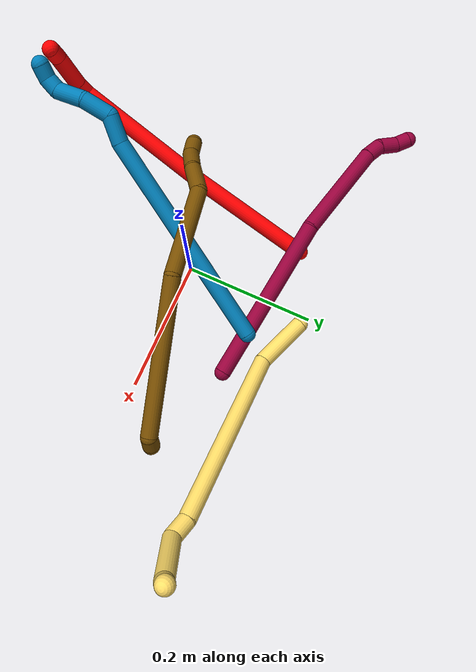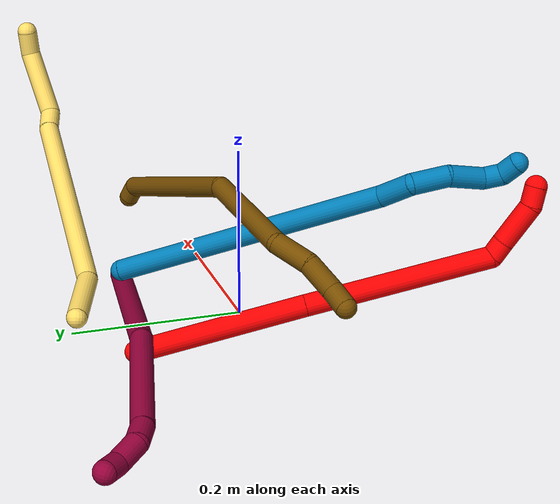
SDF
<sdf version="1.7">
 <world name="default">
  <model name="photoneo_s_sensor">
   <static>1</static>
   <pose>0 0 2 1.57079 1.57079 3.14159</pose>
   <link name="link">
    <inertial><mass>0.1</mass></inertial>
    <sensor name="sensor" type="depth">
     <update_rate>30</update_rate>
     <camera>
      <horizontal_fov>1.22</horizontal_fov>
      <image><width>1920</width><height>1200</height><format>B8G8R8</format></image>
      <clip><near>0.1</near><far>4</far></clip>
      <depth_camera><output>points</output></depth_camera>
     </camera>
     <plugin name="camera_plugin" filename="libgazebo_ros_depth_camera.so">
      <baseline>0.2</baseline>
      <alwaysOn>1</alwaysOn>
      <updateRate>0.0</updateRate>
      <cameraName>camera_ir</cameraName>
      <imageTopicName>/camera/color/image_raw</imageTopicName>
      <cameraInfoTopicName>/camera/color/camera_info</cameraInfoTopicName>
      <depthImageTopicName>/camera/depth/image_raw</depthImageTopicName>
      <depthImageCameraInfoTopicName>/camera/depth/camera_info</depthImageCameraInfoTopicName>
      <pointCloudTopicName>/camera/depth/points</pointCloudTopicName>
      <frameName>fr_optical</frameName>
      <pointCloudCutoff>0.1</pointCloudCutoff>
      <pointCloudCutoffMax>2.0</pointCloudCutoffMax>
      <distortionK1>0</distortionK1>
      <distortionK2>0</distortionK2>
      <distortionK3>0</distortionK3>
      <distortionT1>0</distortionT1>
      <distortionT2>0</distortionT2>
      <CxPrime>0</CxPrime>
      <Cx>0</Cx>
      <Cy>0</Cy>
      <focalLength>0</focalLength>
      <hackBaseline>0</hackBaseline>
     </plugin>
    </sensor>
   </link>
  </model>
  <model name="bin">
   <static>1</static>
   <link name="bottom">
    <collision name="collision-bottom">
     <pose>0 0 -0.01 0 -0 0</pose>
     <geometry><box><size>0.8 0.6 0.02</size></box></geometry>
     <surface>
      <friction><ode><mu>100</mu><mu2>100</mu2></ode></friction>
      <contact><collide_bitmask>65535</collide_bitmask></contact>
     </surface>
    </collision>
   </link>
   <link name="west_wall">
    <collision name="collision-west_wall">
     <pose>-0.41 0 0.1 0 -0 0</pose>
     <geometry><box><size>0.02 0.6 0.2</size></box></geometry>
     <surface>
      <friction><ode><mu>100</mu><mu2>100</mu2></ode></friction>
      <contact><collide_bitmask>65535</collide_bitmask></contact>
     </surface>
    </collision>
   </link>
   <link name="east_wall">
    <collision name="collision-east_wall">
     <pose>0.41 0 0.1 0 -0 0</pose>
     <geometry><box><size>0.02 0.6 0.2</size></box></geometry>
     <surface>
      <friction><ode><mu>100</mu><mu2>100</mu2></ode></friction>
      <contact><collide_bitmask>65535</collide_bitmask></contact>
     </surface>
    </collision>
   </link>
   <link name="south_wall">
    <collision name="collision-south_wall">
     <pose>0 -0.31 0.1 0 -0 0</pose>
     <geometry><box><size>0.8 0.02 0.2</size></box></geometry>
     <surface>
      <friction><ode><mu>100</mu><mu2>100</mu2></ode></friction>
      <contact><collide_bitmask>65535</collide_bitmask></contact>
     </surface>
    </collision>
   </link>
   <link name="north_wall">
    <collision name="collision-north_wall">
     <pose>0 0.31 0.1 0 -0 0</pose>
     <geometry><box><size>0.8 0.02 0.2</size></box></geometry>
     <surface>
      <friction><ode><mu>100</mu><mu2>100</mu2></ode></friction>
      <contact><collide_bitmask>65535</collide_bitmask></contact>
     </surface>
    </collision>
   </link>
  </model>
  <model name="2">
   <static>0</static>
   <link name="2">
    <collision name="collision-cylinder-e_1_1_4">
     <pose>-0.010994 -0.058014 0.076432 0.64925 -0.11408 -0.038428</pose>
     <geometry><cylinder><radius>0.0125</radius><length>0.193167</length></cylinder></geometry>
     <surface>
      <friction><ode><mu>1.16</mu><mu2>1.16</mu2><slip1>0</slip1><slip2>0</slip2></ode></friction>
      <contact><ode><kp>1e+06</kp><kd>1</kd><max_vel>0</max_vel><min_depth>0.001</min_depth></ode></contact>
     </surface>
    </collision>
    <visual name="visual-cylinder-e_1_1_4">
     <pose>-0.010994 -0.058014 0.076432 0.64925 -0.11408 -0.038428</pose>
     <geometry><cylinder><radius>0.0125</radius><length>0.193167</length></cylinder></geometry>
     <material><ambient>1 0 0 1</ambient></material>
    </visual>
    <collision name="collision-cylinder-e_2_4_5">
     <pose>-0.030759 -0.177487 0.239595 0.616489 -0.082322 -0.026224</pose>
     <geometry><cylinder><radius>0.0125</radius><length>0.21332</length></cylinder></geometry>
     <surface>
      <friction><ode><mu>1.16</mu><mu2>1.16</mu2><slip1>0</slip1><slip2>0</slip2></ode></friction>
      <contact><ode><kp>1e+06</kp><kd>1</kd><max_vel>0</max_vel><min_depth>0.001</min_depth></ode></contact>
     </surface>
    </collision>
    <visual name="visual-cylinder-e_2_4_5">
     <pose>-0.030759 -0.177487 0.239595 0.616489 -0.082322 -0.026224</pose>
     <geometry><cylinder><radius>0.0125</radius><length>0.21332</length></cylinder></geometry>
     <material><ambient>1 0 0 1</ambient></material>
    </visual>
    <collision name="collision-cylinder-e_3_5_6">
     <pose>-0.034971 -0.247125 0.330565 1.09258 0.459536 0.282532</pose>
     <geometry><cylinder><radius>0.0125</radius><length>0.020559</length></cylinder></geometry>
     <surface>
      <friction><ode><mu>1.16</mu><mu2>1.16</mu2><slip1>0</slip1><slip2>0</slip2></ode></friction>
      <contact><ode><kp>1e+06</kp><kd>1</kd><max_vel>0</max_vel><min_depth>0.001</min_depth></ode></contact>
     </surface>
    </collision>
    <visual name="visual-cylinder-e_3_5_6">
     <pose>-0.034971 -0.247125 0.330565 1.09258 0.459536 0.282532</pose>
     <geometry><cylinder><radius>0.0125</radius><length>0.020559</length></cylinder></geometry>
     <material><ambient>1 0 0 1</ambient></material>
    </visual>
    <collision name="collision-cylinder-e_4_6_7">
     <pose>-0.016832 -0.273258 0.346181 1.006 0.568554 0.318801</pose>
     <geometry><cylinder><radius>0.0125</radius><length>0.050442</length></cylinder></geometry>
     <surface>
      <friction><ode><mu>1.16</mu><mu2>1.16</mu2><slip1>0</slip1><slip2>0</slip2></ode></friction>
      <contact><ode><kp>1e+06</kp><kd>1</kd><max_vel>0</max_vel><min_depth>0.001</min_depth></ode></contact>
     </surface>
    </collision>
    <visual name="visual-cylinder-e_4_6_7">
     <pose>-0.016832 -0.273258 0.346181 1.006 0.568554 0.318801</pose>
     <geometry><cylinder><radius>0.0125</radius><length>0.050442</length></cylinder></geometry>
     <material><ambient>1 0 0 1</ambient></material>
    </visual>
    <collision name="collision-cylinder-e_5_7_2">
     <pose>0.003783 -0.299963 0.358326 1.48317 0.675148 0.622169</pose>
     <geometry><cylinder><radius>0.0125</radius><length>0.022512</length></cylinder></geometry>
     <surface>
      <friction><ode><mu>1.16</mu><mu2>1.16</mu2><slip1>0</slip1><slip2>0</slip2></ode></friction>
      <contact><ode><kp>1e+06</kp><kd>1</kd><max_vel>0</max_vel><min_depth>0.001</min_depth></ode></contact>
     </surface>
    </collision>
    <visual name="visual-cylinder-e_5_7_2">
     <pose>0.003783 -0.299963 0.358326 1.48317 0.675148 0.622169</pose>
     <geometry><cylinder><radius>0.0125</radius><length>0.022512</length></cylinder></geometry>
     <material><ambient>1 0 0 1</ambient></material>
    </visual>
    <collision name="collision-sphere-2">
     <pose>0.010818 -0.308716 0.359095 0 -0 0</pose>
     <geometry><sphere><radius>0.0125</radius></sphere></geometry>
     <surface>
      <friction><ode><mu>1.16</mu><mu2>1.16</mu2><slip1>0</slip1><slip2>0</slip2></ode></friction>
      <contact><ode><kp>1e+06</kp><kd>1</kd><max_vel>0</max_vel><min_depth>0.001</min_depth></ode></contact>
     </surface>
    </collision>
    <visual name="visual-sphere-2">
     <pose>0.010818 -0.308716 0.359095 0 -0 0</pose>
     <geometry><sphere><radius>0.0125</radius></sphere></geometry>
     <material><ambient>1 0 0 1</ambient></material>
    </visual>
    <collision name="collision-sphere-7">
     <pose>-0.003252 -0.29121 0.357557 0 -0 0</pose>
     <geometry><sphere><radius>0.0125</radius></sphere></geometry>
     <surface>
      <friction><ode><mu>1.16</mu><mu2>1.16</mu2><slip1>0</slip1><slip2>0</slip2></ode></friction>
      <contact><ode><kp>1e+06</kp><kd>1</kd><max_vel>0</max_vel><min_depth>0.001</min_depth></ode></contact>
     </surface>
    </collision>
    <visual name="visual-sphere-7">
     <pose>-0.003252 -0.29121 0.357557 0 -0 0</pose>
     <geometry><sphere><radius>0.0125</radius></sphere></geometry>
     <material><ambient>1 0 0 1</ambient></material>
    </visual>
    <collision name="collision-sphere-6">
     <pose>-0.030411 -0.255305 0.334805 0 -0 0</pose>
     <geometry><sphere><radius>0.0125</radius></sphere></geometry>
     <surface>
      <friction><ode><mu>1.16</mu><mu2>1.16</mu2><slip1>0</slip1><slip2>0</slip2></ode></friction>
      <contact><ode><kp>1e+06</kp><kd>1</kd><max_vel>0</max_vel><min_depth>0.001</min_depth></ode></contact>
     </surface>
    </collision>
    <visual name="visual-sphere-6">
     <pose>-0.030411 -0.255305 0.334805 0 -0 0</pose>
     <geometry><sphere><radius>0.0125</radius></sphere></geometry>
     <material><ambient>1 0 0 1</ambient></material>
    </visual>
    <collision name="collision-sphere-5">
     <pose>-0.03953 -0.238946 0.326325 0 -0 0</pose>
     <geometry><sphere><radius>0.0125</radius></sphere></geometry>
     <surface>
      <friction><ode><mu>1.16</mu><mu2>1.16</mu2><slip1>0</slip1><slip2>0</slip2></ode></friction>
      <contact><ode><kp>1e+06</kp><kd>1</kd><max_vel>0</max_vel><min_depth>0.001</min_depth></ode></contact>
     </surface>
    </collision>
    <visual name="visual-sphere-5">
     <pose>-0.03953 -0.238946 0.326325 0 -0 0</pose>
     <geometry><sphere><radius>0.0125</radius></sphere></geometry>
     <material><ambient>1 0 0 1</ambient></material>
    </visual>
    <collision name="collision-sphere-1">
     <geometry><sphere><radius>0.0125</radius></sphere></geometry>
     <surface>
      <friction><ode><mu>1.16</mu><mu2>1.16</mu2><slip1>0</slip1><slip2>0</slip2></ode></friction>
      <contact><ode><kp>1e+06</kp><kd>1</kd><max_vel>0</max_vel><min_depth>0.001</min_depth></ode></contact>
     </surface>
    </collision>
    <visual name="visual-sphere-1">
     <geometry><sphere><radius>0.0125</radius></sphere></geometry>
     <material><ambient>1 0 0 1</ambient></material>
    </visual>
    <collision name="collision-sphere-4">
     <pose>-0.021989 -0.116027 0.152865 0 -0 0</pose>
     <geometry><sphere><radius>0.0125</radius></sphere></geometry>
     <surface>
      <friction><ode><mu>1.16</mu><mu2>1.16</mu2><slip1>0</slip1><slip2>0</slip2></ode></friction>
      <contact><ode><kp>1e+06</kp><kd>1</kd><max_vel>0</max_vel><min_depth>0.001</min_depth></ode></contact>
     </surface>
    </collision>
    <visual name="visual-sphere-4">
     <pose>-0.021989 -0.116027 0.152865 0 -0 0</pose>
     <geometry><sphere><radius>0.0125</radius></sphere></geometry>
     <material><ambient>1 0 0 1</ambient></material>
    </visual>
    <inertial>
     <pose>-0.020336 -0.14937 0.196399 0 -0 0</pose>
     <mass>0.5</mass>
     <inertia>
      <ixx>0.001391</ixx>
      <ixy>0</ixy>
      <ixz>0</ixz>
      <iyy>0.001099</iyy>
      <iyz>0</iyz>
      <izz>0.001004</izz>
     </inertia>
    </inertial>
   </link>
   <pose>-0.092126 0.145712 0.011469 -1.66633 -0.92538 2.46548</pose>
  </model>
  <model name="5">
   <static>0</static>
   <link name="5">
    <collision name="collision-cylinder-e_1_1_4">
     <pose>0.027729 -0.021243 0.022332 0.760396 0.732618 0.304255</pose>
     <geometry><cylinder><radius>0.0125</radius><length>0.082918</length></cylinder></geometry>
     <surface>
      <friction><ode><mu>1.16</mu><mu2>1.16</mu2><slip1>0</slip1><slip2>0</slip2></ode></friction>
      <contact><ode><kp>1e+06</kp><kd>1</kd><max_vel>0</max_vel><min_depth>0.001</min_depth></ode></contact>
     </surface>
    </collision>
    <visual name="visual-cylinder-e_1_1_4">
     <pose>0.027729 -0.021243 0.022332 0.760396 0.732618 0.304255</pose>
     <geometry><cylinder><radius>0.0125</radius><length>0.082918</length></cylinder></geometry>
     <material><ambient>1 0.858824 0.4 1</ambient></material>
    </visual>
    <collision name="collision-cylinder-e_2_4_5">
     <pose>0.146686 -0.059369 0.143501 0.169195 0.738227 0.065585</pose>
     <geometry><cylinder><radius>0.0125</radius><length>0.271119</length></cylinder></geometry>
     <surface>
      <friction><ode><mu>1.16</mu><mu2>1.16</mu2><slip1>0</slip1><slip2>0</slip2></ode></friction>
      <contact><ode><kp>1e+06</kp><kd>1</kd><max_vel>0</max_vel><min_depth>0.001</min_depth></ode></contact>
     </surface>
    </collision>
    <visual name="visual-cylinder-e_2_4_5">
     <pose>0.146686 -0.059369 0.143501 0.169195 0.738227 0.065585</pose>
     <geometry><cylinder><radius>0.0125</radius><length>0.271119</length></cylinder></geometry>
     <material><ambient>1 0.858824 0.4 1</ambient></material>
    </visual>
    <collision name="collision-cylinder-e_3_5_6">
     <pose>0.246176 -0.081173 0.25408 0.39676 0.575636 0.118881</pose>
     <geometry><cylinder><radius>0.0125</radius><length>0.030353</length></cylinder></geometry>
     <surface>
      <friction><ode><mu>1.16</mu><mu2>1.16</mu2><slip1>0</slip1><slip2>0</slip2></ode></friction>
      <contact><ode><kp>1e+06</kp><kd>1</kd><max_vel>0</max_vel><min_depth>0.001</min_depth></ode></contact>
     </surface>
    </collision>
    <visual name="visual-cylinder-e_3_5_6">
     <pose>0.246176 -0.081173 0.25408 0.39676 0.575636 0.118881</pose>
     <geometry><cylinder><radius>0.0125</radius><length>0.030353</length></cylinder></geometry>
     <material><ambient>1 0.858824 0.4 1</ambient></material>
    </visual>
    <collision name="collision-cylinder-e_4_6_7">
     <pose>0.26409 -0.074445 0.305571 -0.285059 0.228939 -0.032995</pose>
     <geometry><cylinder><radius>0.0125</radius><length>0.085061</length></cylinder></geometry>
     <surface>
      <friction><ode><mu>1.16</mu><mu2>1.16</mu2><slip1>0</slip1><slip2>0</slip2></ode></friction>
      <contact><ode><kp>1e+06</kp><kd>1</kd><max_vel>0</max_vel><min_depth>0.001</min_depth></ode></contact>
     </surface>
    </collision>
    <visual name="visual-cylinder-e_4_6_7">
     <pose>0.26409 -0.074445 0.305571 -0.285059 0.228939 -0.032995</pose>
     <geometry><cylinder><radius>0.0125</radius><length>0.085061</length></cylinder></geometry>
     <material><ambient>1 0.858824 0.4 1</ambient></material>
    </visual>
    <collision name="collision-cylinder-e_5_7_2">
     <pose>0.268982 -0.057157 0.358694 -0.399059 -0.316914 0.064606</pose>
     <geometry><cylinder><radius>0.0125</radius><length>0.030548</length></cylinder></geometry>
     <surface>
      <friction><ode><mu>1.16</mu><mu2>1.16</mu2><slip1>0</slip1><slip2>0</slip2></ode></friction>
      <contact><ode><kp>1e+06</kp><kd>1</kd><max_vel>0</max_vel><min_depth>0.001</min_depth></ode></contact>
     </surface>
    </collision>
    <visual name="visual-cylinder-e_5_7_2">
     <pose>0.268982 -0.057157 0.358694 -0.399059 -0.316914 0.064606</pose>
     <geometry><cylinder><radius>0.0125</radius><length>0.030548</length></cylinder></geometry>
     <material><ambient>1 0.858824 0.4 1</ambient></material>
    </visual>
    <collision name="collision-sphere-2">
     <pose>0.264222 -0.051518 0.372066 0 -0 0</pose>
     <geometry><sphere><radius>0.0125</radius></sphere></geometry>
     <surface>
      <friction><ode><mu>1.16</mu><mu2>1.16</mu2><slip1>0</slip1><slip2>0</slip2></ode></friction>
      <contact><ode><kp>1e+06</kp><kd>1</kd><max_vel>0</max_vel><min_depth>0.001</min_depth></ode></contact>
     </surface>
    </collision>
    <visual name="visual-sphere-2">
     <pose>0.264222 -0.051518 0.372066 0 -0 0</pose>
     <geometry><sphere><radius>0.0125</radius></sphere></geometry>
     <material><ambient>1 0.858824 0.4 1</ambient></material>
    </visual>
    <collision name="collision-sphere-7">
     <pose>0.273742 -0.062796 0.345321 0 -0 0</pose>
     <geometry><sphere><radius>0.0125</radius></sphere></geometry>
     <surface>
      <friction><ode><mu>1.16</mu><mu2>1.16</mu2><slip1>0</slip1><slip2>0</slip2></ode></friction>
      <contact><ode><kp>1e+06</kp><kd>1</kd><max_vel>0</max_vel><min_depth>0.001</min_depth></ode></contact>
     </surface>
    </collision>
    <visual name="visual-sphere-7">
     <pose>0.273742 -0.062796 0.345321 0 -0 0</pose>
     <geometry><sphere><radius>0.0125</radius></sphere></geometry>
     <material><ambient>1 0.858824 0.4 1</ambient></material>
    </visual>
    <collision name="collision-sphere-6">
     <pose>0.254438 -0.086093 0.265822 0 -0 0</pose>
     <geometry><sphere><radius>0.0125</radius></sphere></geometry>
     <surface>
      <friction><ode><mu>1.16</mu><mu2>1.16</mu2><slip1>0</slip1><slip2>0</slip2></ode></friction>
      <contact><ode><kp>1e+06</kp><kd>1</kd><max_vel>0</max_vel><min_depth>0.001</min_depth></ode></contact>
     </surface>
    </collision>
    <visual name="visual-sphere-6">
     <pose>0.254438 -0.086093 0.265822 0 -0 0</pose>
     <geometry><sphere><radius>0.0125</radius></sphere></geometry>
     <material><ambient>1 0.858824 0.4 1</ambient></material>
    </visual>
    <collision name="collision-sphere-5">
     <pose>0.237915 -0.076254 0.242338 0 -0 0</pose>
     <geometry><sphere><radius>0.0125</radius></sphere></geometry>
     <surface>
      <friction><ode><mu>1.16</mu><mu2>1.16</mu2><slip1>0</slip1><slip2>0</slip2></ode></friction>
      <contact><ode><kp>1e+06</kp><kd>1</kd><max_vel>0</max_vel><min_depth>0.001</min_depth></ode></contact>
     </surface>
    </collision>
    <visual name="visual-sphere-5">
     <pose>0.237915 -0.076254 0.242338 0 -0 0</pose>
     <geometry><sphere><radius>0.0125</radius></sphere></geometry>
     <material><ambient>1 0.858824 0.4 1</ambient></material>
    </visual>
    <collision name="collision-sphere-1">
     <geometry><sphere><radius>0.0125</radius></sphere></geometry>
     <surface>
      <friction><ode><mu>1.16</mu><mu2>1.16</mu2><slip1>0</slip1><slip2>0</slip2></ode></friction>
      <contact><ode><kp>1e+06</kp><kd>1</kd><max_vel>0</max_vel><min_depth>0.001</min_depth></ode></contact>
     </surface>
    </collision>
    <visual name="visual-sphere-1">
     <geometry><sphere><radius>0.0125</radius></sphere></geometry>
     <material><ambient>1 0.858824 0.4 1</ambient></material>
    </visual>
    <collision name="collision-sphere-4">
     <pose>0.055457 -0.042485 0.044665 0 -0 0</pose>
     <geometry><sphere><radius>0.0125</radius></sphere></geometry>
     <surface>
      <friction><ode><mu>1.16</mu><mu2>1.16</mu2><slip1>0</slip1><slip2>0</slip2></ode></friction>
      <contact><ode><kp>1e+06</kp><kd>1</kd><max_vel>0</max_vel><min_depth>0.001</min_depth></ode></contact>
     </surface>
    </collision>
    <visual name="visual-sphere-4">
     <pose>0.055457 -0.042485 0.044665 0 -0 0</pose>
     <geometry><sphere><radius>0.0125</radius></sphere></geometry>
     <material><ambient>1 0.858824 0.4 1</ambient></material>
    </visual>
    <inertial>
     <pose>0.160443 -0.0568 0.170839 0 -0 0</pose>
     <mass>0.5</mass>
     <inertia>
      <ixx>0.001441</ixx>
      <ixy>0</ixy>
      <ixz>0</ixz>
      <iyy>0.001845</iyy>
      <iyz>0</iyz>
      <izz>-0.000924</izz>
     </inertia>
    </inertial>
   </link>
   <pose>0.015237 0.190825 0.012299 0.269335 0.308223 0.351969</pose>
  </model>
  <model name="8">
   <static>0</static>
   <link name="8">
    <collision name="collision-cylinder-e_1_1_4">
     <pose>-0.111594 0.026917 0.060708 -0.417339 -1.034 0.239644</pose>
     <geometry><cylinder><radius>0.0125</radius><length>0.259717</length></cylinder></geometry>
     <surface>
      <friction><ode><mu>1.16</mu><mu2>1.16</mu2><slip1>0</slip1><slip2>0</slip2></ode></friction>
      <contact><ode><kp>1e+06</kp><kd>1</kd><max_vel>0</max_vel><min_depth>0.001</min_depth></ode></contact>
     </surface>
    </collision>
    <visual name="visual-cylinder-e_1_1_4">
     <pose>-0.111594 0.026917 0.060708 -0.417339 -1.034 0.239644</pose>
     <geometry><cylinder><radius>0.0125</radius><length>0.259717</length></cylinder></geometry>
     <material><ambient>0.584314 0 0.227451 1</ambient></material>
    </visual>
    <collision name="collision-cylinder-e_2_4_5">
     <pose>-0.295881 0.050655 0.155865 0.092033 -1.12661 -0.058149</pose>
     <geometry><cylinder><radius>0.0125</radius><length>0.161009</length></cylinder></geometry>
     <surface>
      <friction><ode><mu>1.16</mu><mu2>1.16</mu2><slip1>0</slip1><slip2>0</slip2></ode></friction>
      <contact><ode><kp>1e+06</kp><kd>1</kd><max_vel>0</max_vel><min_depth>0.001</min_depth></ode></contact>
     </surface>
    </collision>
    <visual name="visual-cylinder-e_2_4_5">
     <pose>-0.295881 0.050655 0.155865 0.092033 -1.12661 -0.058149</pose>
     <geometry><cylinder><radius>0.0125</radius><length>0.161009</length></cylinder></geometry>
     <material><ambient>0.584314 0 0.227451 1</ambient></material>
    </visual>
    <collision name="collision-cylinder-e_3_5_6">
     <pose>-0.381516 0.046256 0.193422 0.373755 -1.31828 -0.290909</pose>
     <geometry><cylinder><radius>0.0125</radius><length>0.026733</length></cylinder></geometry>
     <surface>
      <friction><ode><mu>1.16</mu><mu2>1.16</mu2><slip1>0</slip1><slip2>0</slip2></ode></friction>
      <contact><ode><kp>1e+06</kp><kd>1</kd><max_vel>0</max_vel><min_depth>0.001</min_depth></ode></contact>
     </surface>
    </collision>
    <visual name="visual-cylinder-e_3_5_6">
     <pose>-0.381516 0.046256 0.193422 0.373755 -1.31828 -0.290909</pose>
     <geometry><cylinder><radius>0.0125</radius><length>0.026733</length></cylinder></geometry>
     <material><ambient>0.584314 0 0.227451 1</ambient></material>
    </visual>
    <collision name="collision-cylinder-e_4_6_7">
     <pose>-0.408987 0.040086 0.193771 2.07942 -1.1988 -1.72143</pose>
     <geometry><cylinder><radius>0.0125</radius><length>0.031191</length></cylinder></geometry>
     <surface>
      <friction><ode><mu>1.16</mu><mu2>1.16</mu2><slip1>0</slip1><slip2>0</slip2></ode></friction>
      <contact><ode><kp>1e+06</kp><kd>1</kd><max_vel>0</max_vel><min_depth>0.001</min_depth></ode></contact>
     </surface>
    </collision>
    <visual name="visual-cylinder-e_4_6_7">
     <pose>-0.408987 0.040086 0.193771 2.07942 -1.1988 -1.72143</pose>
     <geometry><cylinder><radius>0.0125</radius><length>0.031191</length></cylinder></geometry>
     <material><ambient>0.584314 0 0.227451 1</ambient></material>
    </visual>
    <collision name="collision-cylinder-e_5_7_2">
     <pose>-0.434098 0.035688 0.18972 -2.737 -1.4389 2.68166</pose>
     <geometry><cylinder><radius>0.0125</radius><length>0.021349</length></cylinder></geometry>
     <surface>
      <friction><ode><mu>1.16</mu><mu2>1.16</mu2><slip1>0</slip1><slip2>0</slip2></ode></friction>
      <contact><ode><kp>1e+06</kp><kd>1</kd><max_vel>0</max_vel><min_depth>0.001</min_depth></ode></contact>
     </surface>
    </collision>
    <visual name="visual-cylinder-e_5_7_2">
     <pose>-0.434098 0.035688 0.18972 -2.737 -1.4389 2.68166</pose>
     <geometry><cylinder><radius>0.0125</radius><length>0.021349</length></cylinder></geometry>
     <material><ambient>0.584314 0 0.227451 1</ambient></material>
    </visual>
    <collision name="collision-sphere-2">
     <pose>-0.44468 0.03624 0.188429 0 -0 0</pose>
     <geometry><sphere><radius>0.0125</radius></sphere></geometry>
     <surface>
      <friction><ode><mu>1.16</mu><mu2>1.16</mu2><slip1>0</slip1><slip2>0</slip2></ode></friction>
      <contact><ode><kp>1e+06</kp><kd>1</kd><max_vel>0</max_vel><min_depth>0.001</min_depth></ode></contact>
     </surface>
    </collision>
    <visual name="visual-sphere-2">
     <pose>-0.44468 0.03624 0.188429 0 -0 0</pose>
     <geometry><sphere><radius>0.0125</radius></sphere></geometry>
     <material><ambient>0.584314 0 0.227451 1</ambient></material>
    </visual>
    <collision name="collision-sphere-7">
     <pose>-0.423516 0.035135 0.19101 0 -0 0</pose>
     <geometry><sphere><radius>0.0125</radius></sphere></geometry>
     <surface>
      <friction><ode><mu>1.16</mu><mu2>1.16</mu2><slip1>0</slip1><slip2>0</slip2></ode></friction>
      <contact><ode><kp>1e+06</kp><kd>1</kd><max_vel>0</max_vel><min_depth>0.001</min_depth></ode></contact>
     </surface>
    </collision>
    <visual name="visual-sphere-7">
     <pose>-0.423516 0.035135 0.19101 0 -0 0</pose>
     <geometry><sphere><radius>0.0125</radius></sphere></geometry>
     <material><ambient>0.584314 0 0.227451 1</ambient></material>
    </visual>
    <collision name="collision-sphere-6">
     <pose>-0.394459 0.045037 0.196531 0 -0 0</pose>
     <geometry><sphere><radius>0.0125</radius></sphere></geometry>
     <surface>
      <friction><ode><mu>1.16</mu><mu2>1.16</mu2><slip1>0</slip1><slip2>0</slip2></ode></friction>
      <contact><ode><kp>1e+06</kp><kd>1</kd><max_vel>0</max_vel><min_depth>0.001</min_depth></ode></contact>
     </surface>
    </collision>
    <visual name="visual-sphere-6">
     <pose>-0.394459 0.045037 0.196531 0 -0 0</pose>
     <geometry><sphere><radius>0.0125</radius></sphere></geometry>
     <material><ambient>0.584314 0 0.227451 1</ambient></material>
    </visual>
    <collision name="collision-sphere-5">
     <pose>-0.368573 0.047476 0.190313 0 -0 0</pose>
     <geometry><sphere><radius>0.0125</radius></sphere></geometry>
     <surface>
      <friction><ode><mu>1.16</mu><mu2>1.16</mu2><slip1>0</slip1><slip2>0</slip2></ode></friction>
      <contact><ode><kp>1e+06</kp><kd>1</kd><max_vel>0</max_vel><min_depth>0.001</min_depth></ode></contact>
     </surface>
    </collision>
    <visual name="visual-sphere-5">
     <pose>-0.368573 0.047476 0.190313 0 -0 0</pose>
     <geometry><sphere><radius>0.0125</radius></sphere></geometry>
     <material><ambient>0.584314 0 0.227451 1</ambient></material>
    </visual>
    <collision name="collision-sphere-1">
     <geometry><sphere><radius>0.0125</radius></sphere></geometry>
     <surface>
      <friction><ode><mu>1.16</mu><mu2>1.16</mu2><slip1>0</slip1><slip2>0</slip2></ode></friction>
      <contact><ode><kp>1e+06</kp><kd>1</kd><max_vel>0</max_vel><min_depth>0.001</min_depth></ode></contact>
     </surface>
    </collision>
    <visual name="visual-sphere-1">
     <geometry><sphere><radius>0.0125</radius></sphere></geometry>
     <material><ambient>0.584314 0 0.227451 1</ambient></material>
    </visual>
    <collision name="collision-sphere-4">
     <pose>-0.223188 0.053834 0.121417 0 -0 0</pose>
     <geometry><sphere><radius>0.0125</radius></sphere></geometry>
     <surface>
      <friction><ode><mu>1.16</mu><mu2>1.16</mu2><slip1>0</slip1><slip2>0</slip2></ode></friction>
      <contact><ode><kp>1e+06</kp><kd>1</kd><max_vel>0</max_vel><min_depth>0.001</min_depth></ode></contact>
     </surface>
    </collision>
    <visual name="visual-sphere-4">
     <pose>-0.223188 0.053834 0.121417 0 -0 0</pose>
     <geometry><sphere><radius>0.0125</radius></sphere></geometry>
     <material><ambient>0.584314 0 0.227451 1</ambient></material>
    </visual>
    <inertial>
     <pose>-0.217692 0.036791 0.112256 0 -0 0</pose>
     <mass>0.5</mass>
     <inertia>
      <ixx>0.001016</ixx>
      <ixy>0</ixy>
      <ixz>0</ixz>
      <iyy>0.001959</iyy>
      <iyz>0</iyz>
      <izz>0.001316</izz>
     </inertia>
    </inertial>
   </link>
   <pose>0.129629 0.114418 0.011479 1.7662 0.00628 -0.651492</pose>
  </model>
  <model name="9">
   <static>0</static>
   <link name="9">
    <collision name="collision-cylinder-e_1_1_4">
     <pose>-0.01089 -0.002793 0.164638 0.016964 -0.066037 -0.00056</pose>
     <geometry><cylinder><radius>0.0125</radius><length>0.330042</length></cylinder></geometry>
     <surface>
      <friction><ode><mu>1.16</mu><mu2>1.16</mu2><slip1>0</slip1><slip2>0</slip2></ode></friction>
      <contact><ode><kp>1e+06</kp><kd>1</kd><max_vel>0</max_vel><min_depth>0.001</min_depth></ode></contact>
     </surface>
    </collision>
    <visual name="visual-cylinder-e_1_1_4">
     <pose>-0.01089 -0.002793 0.164638 0.016964 -0.066037 -0.00056</pose>
     <geometry><cylinder><radius>0.0125</radius><length>0.330042</length></cylinder></geometry>
     <material><ambient>0 0.490196 0.709804 1</ambient></material>
    </visual>
    <collision name="collision-cylinder-e_2_4_5">
     <pose>-0.027284 -0.009294 0.348472 0.190782 -0.274433 -0.026423</pose>
     <geometry><cylinder><radius>0.0125</radius><length>0.040622</length></cylinder></geometry>
     <surface>
      <friction><ode><mu>1.16</mu><mu2>1.16</mu2><slip1>0</slip1><slip2>0</slip2></ode></friction>
      <contact><ode><kp>1e+06</kp><kd>1</kd><max_vel>0</max_vel><min_depth>0.001</min_depth></ode></contact>
     </surface>
    </collision>
    <visual name="visual-cylinder-e_2_4_5">
     <pose>-0.027284 -0.009294 0.348472 0.190782 -0.274433 -0.026423</pose>
     <geometry><cylinder><radius>0.0125</radius><length>0.040622</length></cylinder></geometry>
     <material><ambient>0 0.490196 0.709804 1</ambient></material>
    </visual>
    <collision name="collision-cylinder-e_3_5_6">
     <pose>-0.028064 -0.005994 0.387258 -0.343514 0.223281 -0.038889</pose>
     <geometry><cylinder><radius>0.0125</radius><length>0.04267</length></cylinder></geometry>
     <surface>
      <friction><ode><mu>1.16</mu><mu2>1.16</mu2><slip1>0</slip1><slip2>0</slip2></ode></friction>
      <contact><ode><kp>1e+06</kp><kd>1</kd><max_vel>0</max_vel><min_depth>0.001</min_depth></ode></contact>
     </surface>
    </collision>
    <visual name="visual-cylinder-e_3_5_6">
     <pose>-0.028064 -0.005994 0.387258 -0.343514 0.223281 -0.038889</pose>
     <geometry><cylinder><radius>0.0125</radius><length>0.04267</length></cylinder></geometry>
     <material><ambient>0 0.490196 0.709804 1</ambient></material>
    </visual>
    <collision name="collision-cylinder-e_4_6_7">
     <pose>-0.011868 0.007912 0.423888 -0.38467 0.557907 -0.111441</pose>
     <geometry><cylinder><radius>0.0125</radius><length>0.043338</length></cylinder></geometry>
     <surface>
      <friction><ode><mu>1.16</mu><mu2>1.16</mu2><slip1>0</slip1><slip2>0</slip2></ode></friction>
      <contact><ode><kp>1e+06</kp><kd>1</kd><max_vel>0</max_vel><min_depth>0.001</min_depth></ode></contact>
     </surface>
    </collision>
    <visual name="visual-cylinder-e_4_6_7">
     <pose>-0.011868 0.007912 0.423888 -0.38467 0.557907 -0.111441</pose>
     <geometry><cylinder><radius>0.0125</radius><length>0.043338</length></cylinder></geometry>
     <material><ambient>0 0.490196 0.709804 1</ambient></material>
    </visual>
    <collision name="collision-cylinder-e_5_7_8">
     <pose>0.000406 0.015568 0.45161 -0.070822 0.074781 -0.00265</pose>
     <geometry><cylinder><radius>0.0125</radius><length>0.021479</length></cylinder></geometry>
     <surface>
      <friction><ode><mu>1.16</mu><mu2>1.16</mu2><slip1>0</slip1><slip2>0</slip2></ode></friction>
      <contact><ode><kp>1e+06</kp><kd>1</kd><max_vel>0</max_vel><min_depth>0.001</min_depth></ode></contact>
     </surface>
    </collision>
    <visual name="visual-cylinder-e_5_7_8">
     <pose>0.000406 0.015568 0.45161 -0.070822 0.074781 -0.00265</pose>
     <geometry><cylinder><radius>0.0125</radius><length>0.021479</length></cylinder></geometry>
     <material><ambient>0 0.490196 0.709804 1</ambient></material>
    </visual>
    <collision name="collision-cylinder-e_6_8_2">
     <pose>-0.00367 0.016343 0.472067 -0.001809 -0.463001 0.000426</pose>
     <geometry><cylinder><radius>0.0125</radius><length>0.021849</length></cylinder></geometry>
     <surface>
      <friction><ode><mu>1.16</mu><mu2>1.16</mu2><slip1>0</slip1><slip2>0</slip2></ode></friction>
      <contact><ode><kp>1e+06</kp><kd>1</kd><max_vel>0</max_vel><min_depth>0.001</min_depth></ode></contact>
     </surface>
    </collision>
    <visual name="visual-cylinder-e_6_8_2">
     <pose>-0.00367 0.016343 0.472067 -0.001809 -0.463001 0.000426</pose>
     <geometry><cylinder><radius>0.0125</radius><length>0.021849</length></cylinder></geometry>
     <material><ambient>0 0.490196 0.709804 1</ambient></material>
    </visual>
    <collision name="collision-sphere-2">
     <pose>-0.00855 0.016361 0.481841 0 -0 0</pose>
     <geometry><sphere><radius>0.0125</radius></sphere></geometry>
     <surface>
      <friction><ode><mu>1.16</mu><mu2>1.16</mu2><slip1>0</slip1><slip2>0</slip2></ode></friction>
      <contact><ode><kp>1e+06</kp><kd>1</kd><max_vel>0</max_vel><min_depth>0.001</min_depth></ode></contact>
     </surface>
    </collision>
    <visual name="visual-sphere-2">
     <pose>-0.00855 0.016361 0.481841 0 -0 0</pose>
     <geometry><sphere><radius>0.0125</radius></sphere></geometry>
     <material><ambient>0 0.490196 0.709804 1</ambient></material>
    </visual>
    <collision name="collision-sphere-4">
     <pose>-0.021779 -0.005586 0.329276 0 -0 0</pose>
     <geometry><sphere><radius>0.0125</radius></sphere></geometry>
     <surface>
      <friction><ode><mu>1.16</mu><mu2>1.16</mu2><slip1>0</slip1><slip2>0</slip2></ode></friction>
      <contact><ode><kp>1e+06</kp><kd>1</kd><max_vel>0</max_vel><min_depth>0.001</min_depth></ode></contact>
     </surface>
    </collision>
    <visual name="visual-sphere-4">
     <pose>-0.021779 -0.005586 0.329276 0 -0 0</pose>
     <geometry><sphere><radius>0.0125</radius></sphere></geometry>
     <material><ambient>0 0.490196 0.709804 1</ambient></material>
    </visual>
    <collision name="collision-sphere-1">
     <geometry><sphere><radius>0.0125</radius></sphere></geometry>
     <surface>
      <friction><ode><mu>1.16</mu><mu2>1.16</mu2><slip1>0</slip1><slip2>0</slip2></ode></friction>
      <contact><ode><kp>1e+06</kp><kd>1</kd><max_vel>0</max_vel><min_depth>0.001</min_depth></ode></contact>
     </surface>
    </collision>
    <visual name="visual-sphere-1">
     <geometry><sphere><radius>0.0125</radius></sphere></geometry>
     <material><ambient>0 0.490196 0.709804 1</ambient></material>
    </visual>
    <collision name="collision-sphere-8">
     <pose>0.001209 0.016326 0.462293 0 -0 0</pose>
     <geometry><sphere><radius>0.0125</radius></sphere></geometry>
     <surface>
      <friction><ode><mu>1.16</mu><mu2>1.16</mu2><slip1>0</slip1><slip2>0</slip2></ode></friction>
      <contact><ode><kp>1e+06</kp><kd>1</kd><max_vel>0</max_vel><min_depth>0.001</min_depth></ode></contact>
     </surface>
    </collision>
    <visual name="visual-sphere-8">
     <pose>0.001209 0.016326 0.462293 0 -0 0</pose>
     <geometry><sphere><radius>0.0125</radius></sphere></geometry>
     <material><ambient>0 0.490196 0.709804 1</ambient></material>
    </visual>
    <collision name="collision-sphere-5">
     <pose>-0.032788 -0.013001 0.367668 0 -0 0</pose>
     <geometry><sphere><radius>0.0125</radius></sphere></geometry>
     <surface>
      <friction><ode><mu>1.16</mu><mu2>1.16</mu2><slip1>0</slip1><slip2>0</slip2></ode></friction>
      <contact><ode><kp>1e+06</kp><kd>1</kd><max_vel>0</max_vel><min_depth>0.001</min_depth></ode></contact>
     </surface>
    </collision>
    <visual name="visual-sphere-5">
     <pose>-0.032788 -0.013001 0.367668 0 -0 0</pose>
     <geometry><sphere><radius>0.0125</radius></sphere></geometry>
     <material><ambient>0 0.490196 0.709804 1</ambient></material>
    </visual>
    <collision name="collision-sphere-6">
     <pose>-0.023339 0.001014 0.406848 0 -0 0</pose>
     <geometry><sphere><radius>0.0125</radius></sphere></geometry>
     <surface>
      <friction><ode><mu>1.16</mu><mu2>1.16</mu2><slip1>0</slip1><slip2>0</slip2></ode></friction>
      <contact><ode><kp>1e+06</kp><kd>1</kd><max_vel>0</max_vel><min_depth>0.001</min_depth></ode></contact>
     </surface>
    </collision>
    <visual name="visual-sphere-6">
     <pose>-0.023339 0.001014 0.406848 0 -0 0</pose>
     <geometry><sphere><radius>0.0125</radius></sphere></geometry>
     <material><ambient>0 0.490196 0.709804 1</ambient></material>
    </visual>
    <collision name="collision-sphere-7">
     <pose>-0.000396 0.01481 0.440928 0 -0 0</pose>
     <geometry><sphere><radius>0.0125</radius></sphere></geometry>
     <surface>
      <friction><ode><mu>1.16</mu><mu2>1.16</mu2><slip1>0</slip1><slip2>0</slip2></ode></friction>
      <contact><ode><kp>1e+06</kp><kd>1</kd><max_vel>0</max_vel><min_depth>0.001</min_depth></ode></contact>
     </surface>
    </collision>
    <visual name="visual-sphere-7">
     <pose>-0.000396 0.01481 0.440928 0 -0 0</pose>
     <geometry><sphere><radius>0.0125</radius></sphere></geometry>
     <material><ambient>0 0.490196 0.709804 1</ambient></material>
    </visual>
    <inertial>
     <pose>-0.012971 -0.001042 0.246804 0 -0 0</pose>
     <mass>0.5</mass>
     <inertia>
      <ixx>0.003024</ixx>
      <ixy>0</ixy>
      <ixz>0</ixz>
      <iyy>0.003033</iyy>
      <iyz>0</iyz>
      <izz>0.000279</izz>
     </inertia>
    </inertial>
   </link>
   <pose>0.067256 0.126437 0.043039 0.724377 1.15632 -1.28976</pose>
  </model>
  <model name="12">
   <static>0</static>
   <link name="12">
    <collision name="collision-cylinder-e_1_1_4">
     <pose>-0.001995 -0.004845 0.008588 0.51363 -0.199581 -0.052575</pose>
     <geometry><cylinder><radius>0.0125</radius><length>0.020121</length></cylinder></geometry>
     <surface>
      <friction><ode><mu>1.16</mu><mu2>1.16</mu2><slip1>0</slip1><slip2>0</slip2></ode></friction>
      <contact><ode><kp>1e+06</kp><kd>1</kd><max_vel>0</max_vel><min_depth>0.001</min_depth></ode></contact>
     </surface>
    </collision>
    <visual name="visual-cylinder-e_1_1_4">
     <pose>-0.001995 -0.004845 0.008588 0.51363 -0.199581 -0.052575</pose>
     <geometry><cylinder><radius>0.0125</radius><length>0.020121</length></cylinder></geometry>
     <material><ambient>0.466667 0.301961 0 1</ambient></material>
    </visual>
    <collision name="collision-cylinder-e_2_4_5">
     <pose>-0.096478 -0.042668 0.073114 0.532701 -0.958674 -0.281741</pose>
     <geometry><cylinder><radius>0.0125</radius><length>0.226015</length></cylinder></geometry>
     <surface>
      <friction><ode><mu>1.16</mu><mu2>1.16</mu2><slip1>0</slip1><slip2>0</slip2></ode></friction>
      <contact><ode><kp>1e+06</kp><kd>1</kd><max_vel>0</max_vel><min_depth>0.001</min_depth></ode></contact>
     </surface>
    </collision>
    <visual name="visual-cylinder-e_2_4_5">
     <pose>-0.096478 -0.042668 0.073114 0.532701 -0.958674 -0.281741</pose>
     <geometry><cylinder><radius>0.0125</radius><length>0.226015</length></cylinder></geometry>
     <material><ambient>0.466667 0.301961 0 1</ambient></material>
    </visual>
    <collision name="collision-cylinder-e_3_5_6">
     <pose>-0.258429 -0.082888 0.137757 0.693938 -1.40919 -0.596503</pose>
     <geometry><cylinder><radius>0.0125</radius><length>0.14076</length></cylinder></geometry>
     <surface>
      <friction><ode><mu>1.16</mu><mu2>1.16</mu2><slip1>0</slip1><slip2>0</slip2></ode></friction>
      <contact><ode><kp>1e+06</kp><kd>1</kd><max_vel>0</max_vel><min_depth>0.001</min_depth></ode></contact>
     </surface>
    </collision>
    <visual name="visual-cylinder-e_3_5_6">
     <pose>-0.258429 -0.082888 0.137757 0.693938 -1.40919 -0.596503</pose>
     <geometry><cylinder><radius>0.0125</radius><length>0.14076</length></cylinder></geometry>
     <material><ambient>0.466667 0.301961 0 1</ambient></material>
    </visual>
    <collision name="collision-cylinder-e_4_6_7">
     <pose>-0.347785 -0.100673 0.142039 1.96802 -1.04919 -1.43234</pose>
     <geometry><cylinder><radius>0.0125</radius><length>0.045886</length></cylinder></geometry>
     <surface>
      <friction><ode><mu>1.16</mu><mu2>1.16</mu2><slip1>0</slip1><slip2>0</slip2></ode></friction>
      <contact><ode><kp>1e+06</kp><kd>1</kd><max_vel>0</max_vel><min_depth>0.001</min_depth></ode></contact>
     </surface>
    </collision>
    <visual name="visual-cylinder-e_4_6_7">
     <pose>-0.347785 -0.100673 0.142039 1.96802 -1.04919 -1.43234</pose>
     <geometry><cylinder><radius>0.0125</radius><length>0.045886</length></cylinder></geometry>
     <material><ambient>0.466667 0.301961 0 1</ambient></material>
    </visual>
    <collision name="collision-cylinder-e_5_7_8">
     <pose>-0.385308 -0.116479 0.129736 2.55268 -1.07755 -2.20259</pose>
     <geometry><cylinder><radius>0.0125</radius><length>0.040033</length></cylinder></geometry>
     <surface>
      <friction><ode><mu>1.16</mu><mu2>1.16</mu2><slip1>0</slip1><slip2>0</slip2></ode></friction>
      <contact><ode><kp>1e+06</kp><kd>1</kd><max_vel>0</max_vel><min_depth>0.001</min_depth></ode></contact>
     </surface>
    </collision>
    <visual name="visual-cylinder-e_5_7_8">
     <pose>-0.385308 -0.116479 0.129736 2.55268 -1.07755 -2.20259</pose>
     <geometry><cylinder><radius>0.0125</radius><length>0.040033</length></cylinder></geometry>
     <material><ambient>0.466667 0.301961 0 1</ambient></material>
    </visual>
    <collision name="collision-cylinder-e_6_8_2">
     <pose>-0.416287 -0.12325 0.11978 2.51358 -1.38106 -2.39259</pose>
     <geometry><cylinder><radius>0.0125</radius><length>0.027184</length></cylinder></geometry>
     <surface>
      <friction><ode><mu>1.16</mu><mu2>1.16</mu2><slip1>0</slip1><slip2>0</slip2></ode></friction>
      <contact><ode><kp>1e+06</kp><kd>1</kd><max_vel>0</max_vel><min_depth>0.001</min_depth></ode></contact>
     </surface>
    </collision>
    <visual name="visual-cylinder-e_6_8_2">
     <pose>-0.416287 -0.12325 0.11978 2.51358 -1.38106 -2.39259</pose>
     <geometry><cylinder><radius>0.0125</radius><length>0.027184</length></cylinder></geometry>
     <material><ambient>0.466667 0.301961 0 1</ambient></material>
    </visual>
    <collision name="collision-sphere-2">
     <pose>-0.429635 -0.124756 0.117706 0 -0 0</pose>
     <geometry><sphere><radius>0.0125</radius></sphere></geometry>
     <surface>
      <friction><ode><mu>1.16</mu><mu2>1.16</mu2><slip1>0</slip1><slip2>0</slip2></ode></friction>
      <contact><ode><kp>1e+06</kp><kd>1</kd><max_vel>0</max_vel><min_depth>0.001</min_depth></ode></contact>
     </surface>
    </collision>
    <visual name="visual-sphere-2">
     <pose>-0.429635 -0.124756 0.117706 0 -0 0</pose>
     <geometry><sphere><radius>0.0125</radius></sphere></geometry>
     <material><ambient>0.466667 0.301961 0 1</ambient></material>
    </visual>
    <collision name="collision-sphere-4">
     <pose>-0.003989 -0.00969 0.017177 0 -0 0</pose>
     <geometry><sphere><radius>0.0125</radius></sphere></geometry>
     <surface>
      <friction><ode><mu>1.16</mu><mu2>1.16</mu2><slip1>0</slip1><slip2>0</slip2></ode></friction>
      <contact><ode><kp>1e+06</kp><kd>1</kd><max_vel>0</max_vel><min_depth>0.001</min_depth></ode></contact>
     </surface>
    </collision>
    <visual name="visual-sphere-4">
     <pose>-0.003989 -0.00969 0.017177 0 -0 0</pose>
     <geometry><sphere><radius>0.0125</radius></sphere></geometry>
     <material><ambient>0.466667 0.301961 0 1</ambient></material>
    </visual>
    <collision name="collision-sphere-1">
     <geometry><sphere><radius>0.0125</radius></sphere></geometry>
     <surface>
      <friction><ode><mu>1.16</mu><mu2>1.16</mu2><slip1>0</slip1><slip2>0</slip2></ode></friction>
      <contact><ode><kp>1e+06</kp><kd>1</kd><max_vel>0</max_vel><min_depth>0.001</min_depth></ode></contact>
     </surface>
    </collision>
    <visual name="visual-sphere-1">
     <geometry><sphere><radius>0.0125</radius></sphere></geometry>
     <material><ambient>0.466667 0.301961 0 1</ambient></material>
    </visual>
    <collision name="collision-sphere-8">
     <pose>-0.402939 -0.121743 0.121855 0 -0 0</pose>
     <geometry><sphere><radius>0.0125</radius></sphere></geometry>
     <surface>
      <friction><ode><mu>1.16</mu><mu2>1.16</mu2><slip1>0</slip1><slip2>0</slip2></ode></friction>
      <contact><ode><kp>1e+06</kp><kd>1</kd><max_vel>0</max_vel><min_depth>0.001</min_depth></ode></contact>
     </surface>
    </collision>
    <visual name="visual-sphere-8">
     <pose>-0.402939 -0.121743 0.121855 0 -0 0</pose>
     <geometry><sphere><radius>0.0125</radius></sphere></geometry>
     <material><ambient>0.466667 0.301961 0 1</ambient></material>
    </visual>
    <collision name="collision-sphere-5">
     <pose>-0.188966 -0.075646 0.129051 0 -0 0</pose>
     <geometry><sphere><radius>0.0125</radius></sphere></geometry>
     <surface>
      <friction><ode><mu>1.16</mu><mu2>1.16</mu2><slip1>0</slip1><slip2>0</slip2></ode></friction>
      <contact><ode><kp>1e+06</kp><kd>1</kd><max_vel>0</max_vel><min_depth>0.001</min_depth></ode></contact>
     </surface>
    </collision>
    <visual name="visual-sphere-5">
     <pose>-0.188966 -0.075646 0.129051 0 -0 0</pose>
     <geometry><sphere><radius>0.0125</radius></sphere></geometry>
     <material><ambient>0.466667 0.301961 0 1</ambient></material>
    </visual>
    <collision name="collision-sphere-6">
     <pose>-0.327893 -0.090131 0.146462 0 -0 0</pose>
     <geometry><sphere><radius>0.0125</radius></sphere></geometry>
     <surface>
      <friction><ode><mu>1.16</mu><mu2>1.16</mu2><slip1>0</slip1><slip2>0</slip2></ode></friction>
      <contact><ode><kp>1e+06</kp><kd>1</kd><max_vel>0</max_vel><min_depth>0.001</min_depth></ode></contact>
     </surface>
    </collision>
    <visual name="visual-sphere-6">
     <pose>-0.327893 -0.090131 0.146462 0 -0 0</pose>
     <geometry><sphere><radius>0.0125</radius></sphere></geometry>
     <material><ambient>0.466667 0.301961 0 1</ambient></material>
    </visual>
    <collision name="collision-sphere-7">
     <pose>-0.367677 -0.111215 0.137617 0 -0 0</pose>
     <geometry><sphere><radius>0.0125</radius></sphere></geometry>
     <surface>
      <friction><ode><mu>1.16</mu><mu2>1.16</mu2><slip1>0</slip1><slip2>0</slip2></ode></friction>
      <contact><ode><kp>1e+06</kp><kd>1</kd><max_vel>0</max_vel><min_depth>0.001</min_depth></ode></contact>
     </surface>
    </collision>
    <visual name="visual-sphere-7">
     <pose>-0.367677 -0.111215 0.137617 0 -0 0</pose>
     <geometry><sphere><radius>0.0125</radius></sphere></geometry>
     <material><ambient>0.466667 0.301961 0 1</ambient></material>
    </visual>
    <inertial>
     <pose>-0.201845 -0.068083 0.102112 0 -0 0</pose>
     <mass>0.5</mass>
     <inertia>
      <ixx>0.000349</ixx>
      <ixy>0</ixy>
      <ixz>0</ixz>
      <iyy>0.000974</iyy>
      <iyz>0</iyz>
      <izz>0.001371</izz>
     </inertia>
    </inertial>
   </link>
   <pose>0.2717 0.070269 0.060288 -0.268047 -0.310203 0.113446</pose>
  </model>
 </world>
</sdf>
